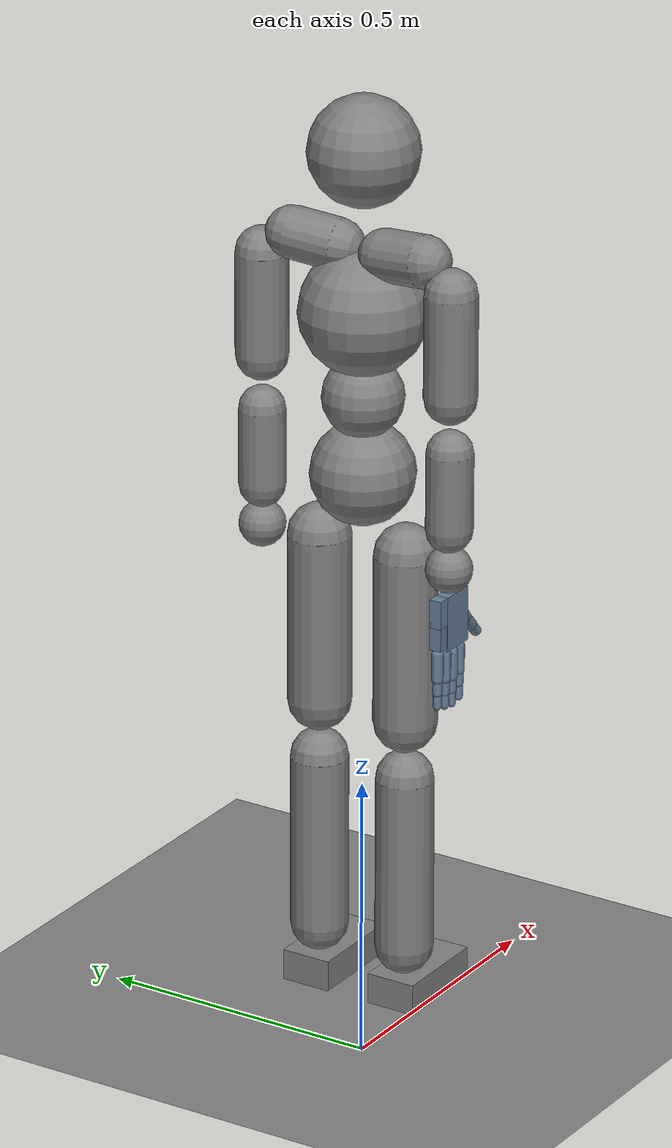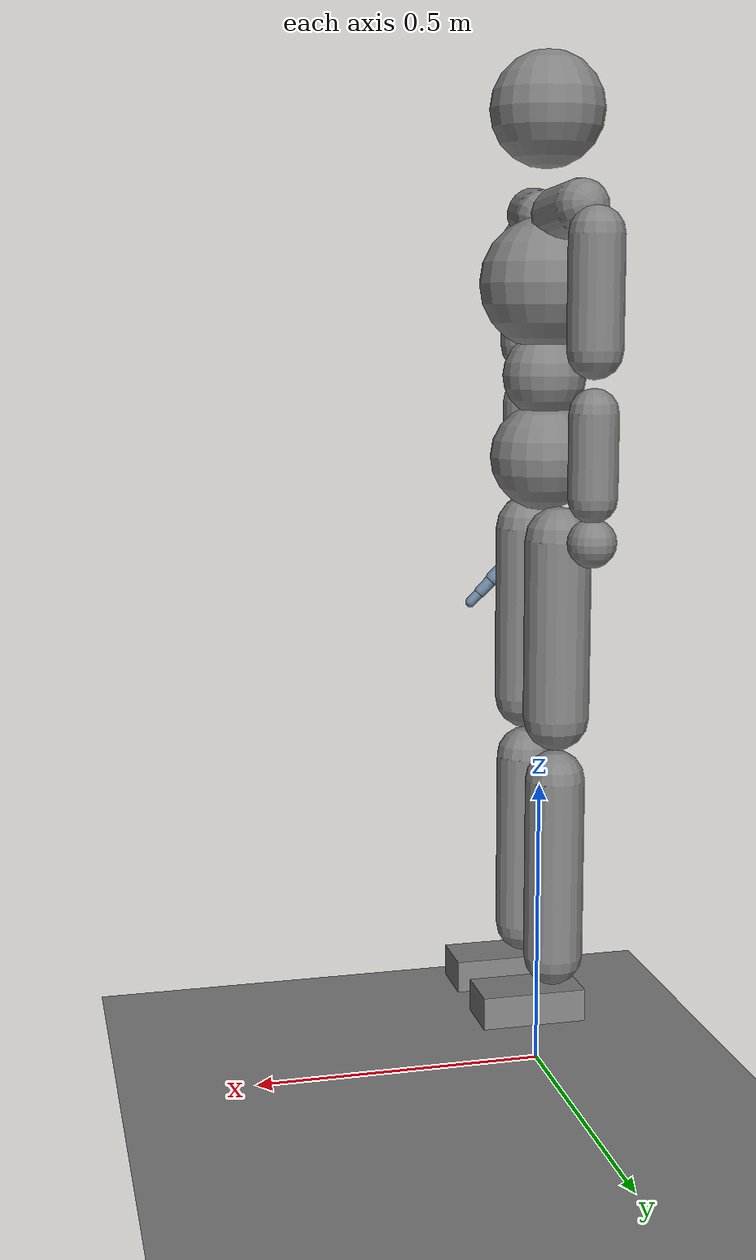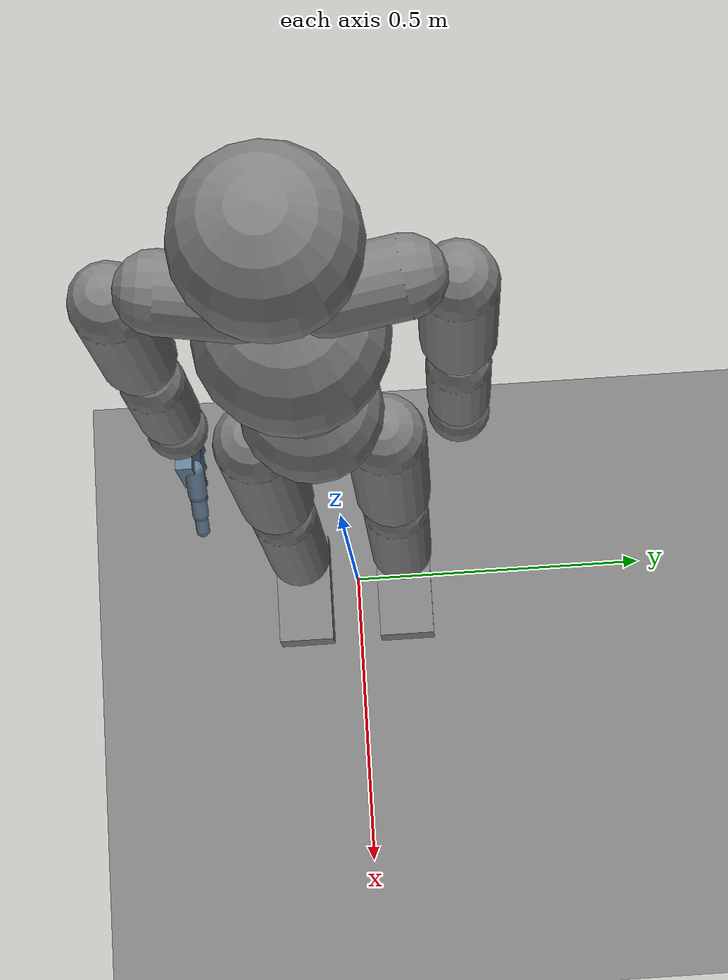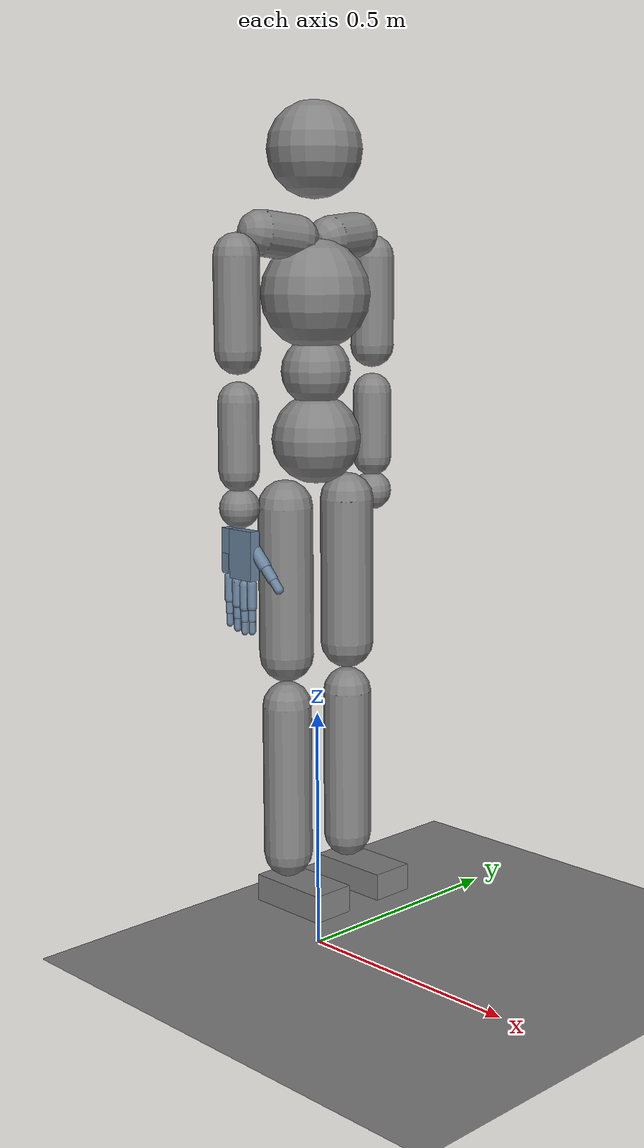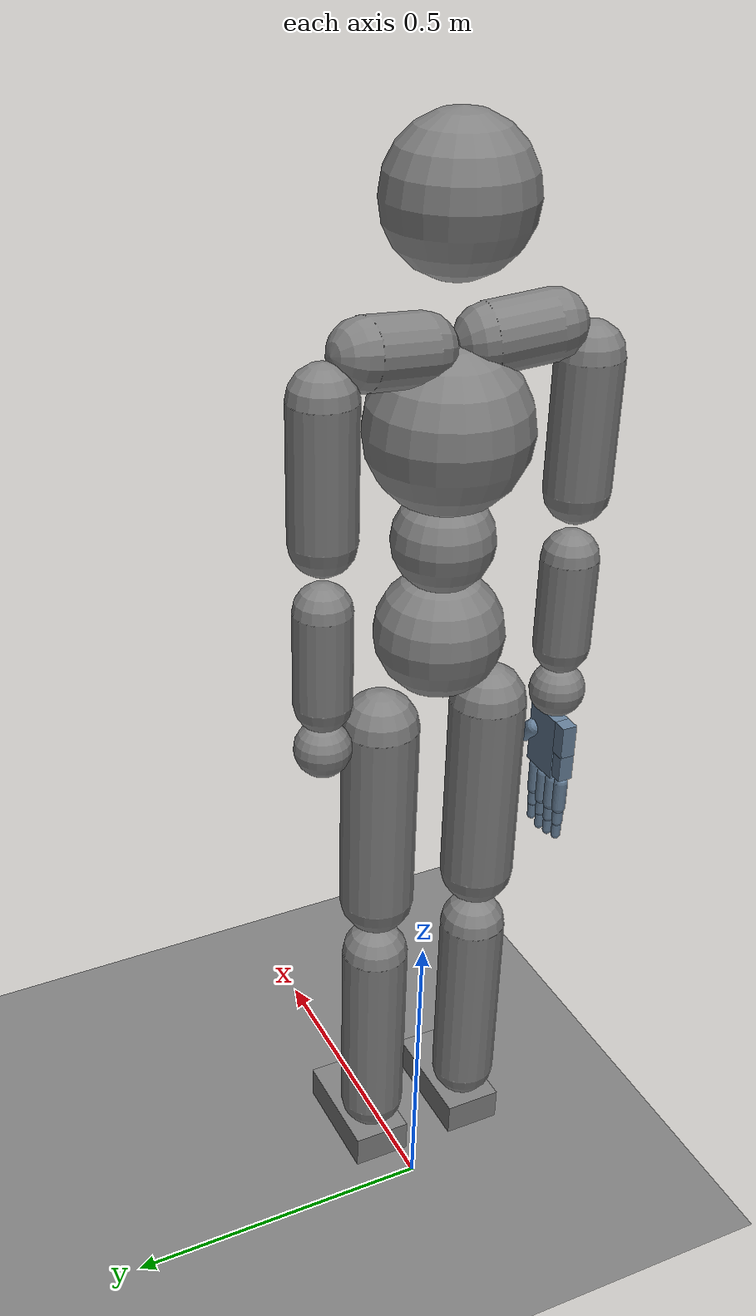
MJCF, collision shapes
<mujoco model="humanoid">

  <statistic extent="2" center="0 0 1"/>

  <option timestep="0.002" iterations="20" apirate="200">
    <flag warmstart="enable"></flag>
  </option>

  <compiler angle="radian" coordinate="local" meshdir="../stls/hand" texturedir="../textures"></compiler>

  <size njmax="500" nconmax="100" nuser_jnt="1" nuser_site="1" nuser_tendon="1" nuser_sensor="1" nuser_actuator="16" nstack="600000"></size>

  <visual>
      <map fogstart="3" fogend="5" force="0.1"></map>
      <quality shadowsize="4096"></quality>
  </visual>

  <asset>
    <texture type="skybox" builtin="gradient" rgb1="0.44 0.85 0.56" rgb2="0.46 0.87 0.58" width="32" height="32"></texture>

    <texture name="robot0:texplane" type="2d" builtin="checker" rgb1="0.2 0.3 0.4" rgb2="0.1 0.15 0.2" width="512" height="512"></texture>
    <texture name="robot0:texgeom" type="cube" builtin="flat" mark="cross" width="127" height="127" rgb1="0.3 0.6 0.5" rgb2="0.3 0.6 0.5" markrgb="0 0 0" random="0.01"></texture>

    <material name="robot0:MatGnd" reflectance="0.5" texture="robot0:texplane" texrepeat="1 1" texuniform="true"></material>
    <material name="robot0:MatColl" specular="1" shininess="0.3" reflectance="0.5" rgba="0.4 0.5 0.6 1"></material>
    <material name="robot0:MatViz" specular="0.75" shininess="0.1" reflectance="0.5" rgba="0.93 0.93 0.93 1"></material>
    <material name="robot0:object" texture="robot0:texgeom" texuniform="false"></material>
    <material name="floor_mat" specular="0" shininess="0.5" reflectance="0" rgba="0.2 0.2 0.2 0"></material>

    <mesh name="robot0:forearm" file="forearm_electric.stl"></mesh>
    <mesh name="robot0:forearm_cvx" file="forearm_electric_cvx.stl"></mesh>
    <mesh name="robot0:wrist" scale="0.001 0.001 0.001" file="wrist.stl"></mesh>
    <mesh name="robot0:palm" scale="0.001 0.001 0.001" file="palm.stl"></mesh>
    <mesh name="robot0:knuckle" scale="0.001 0.001 0.001" file="knuckle.stl"></mesh>
    <mesh name="robot0:F3" scale="0.001 0.001 0.001" file="F3.stl"></mesh>
    <mesh name="robot0:F2" scale="0.001 0.001 0.001" file="F2.stl"></mesh>
    <mesh name="robot0:F1" scale="0.001 0.001 0.001" file="F1.stl"></mesh>
    <mesh name="robot0:lfmetacarpal" scale="0.001 0.001 0.001" file="lfmetacarpal.stl"></mesh>
    <mesh name="robot0:TH3_z" scale="0.001 0.001 0.001" file="TH3_z.stl"></mesh>
    <mesh name="robot0:TH2_z" scale="0.001 0.001 0.001" file="TH2_z.stl"></mesh>
    <mesh name="robot0:TH1_z" scale="0.001 0.001 0.001" file="TH1_z.stl"></mesh>
  </asset>

  <default>
    <motor ctrlrange="-1 1" ctrllimited="true"/>
    <default class="body">
      <geom type="capsule" condim="1" friction="1.0 0.05 0.05" solimp=".9 .99 .003" solref=".015 1"/>
      <joint type="hinge" damping="0.1" stiffness="5" armature=".007" limited="true" solimplimit="0 .99 .01"/>
      <site size=".04" group="3"/>
      <default class="force-torque">
        <site type="box" size=".01 .01 .02" rgba="1 0 0 1" />
      </default>
      <default class="touch">
        <site type="capsule" rgba="0 0 1 .3"/>
      </default>
    </default>
    <default class="robot0:asset_class">
        <geom friction="1 0.005 0.001" condim="3" margin="0.0005" contype="1" conaffinity="1"></geom>
        <joint limited="true" damping="0.1" armature="0.001" margin="0.01" frictionloss="0.001"></joint>
        <site size="0.005" rgba="0.4 0.9 0.4 1"></site>
        <general ctrllimited="true" forcelimited="true"></general>
    </default>
    <default class="robot0:D_Touch">
        <site type="box" size="0.009 0.004 0.013" pos="0 -0.004 0.018" rgba="0.8 0.8 0.8 0.15" group="4"></site>
    </default>
    <default class="robot0:DC_Hand">
        <geom material="robot0:MatColl" contype="1" conaffinity="0" group="4"></geom>
    </default>
    <default class="robot0:D_Vizual">
        <geom material="robot0:MatViz" contype="0" conaffinity="0" group="1" type="mesh"></geom>
    </default>
    <default class="robot0:free">
        <joint type="free" damping="0" armature="0" limited="false"></joint>
    </default>
  </default>

  <worldbody>
    <geom name="floor" type="plane" conaffinity="1" size="100 100 .2"/>
    <body name="pelvis" pos="0 0 1" childclass="body">
      <freejoint name="root"/>
      <site name="root" class="force-torque"/>
      <geom name="pelvis" type="sphere" pos="0 0 0.07" size=".09" density="2226"/>
      <geom name="upper_waist" type="sphere" pos="0 0 0.205" size="0.07" density="2226"/>
      <site name="pelvis" class="touch" type="sphere" pos="0 0 0.07" size="0.091"/>
      <site name="upper_waist" class="touch" type="sphere" pos="0 0 0.205" size="0.071"/>

      <body name="torso" pos="0 0 0.236151">
        <light name="top" pos="0 0 2" mode="trackcom"/>
        <camera name="back" pos="-3 0 1" xyaxes="0 -1 0 1 0 2" mode="trackcom"/>
        <camera name="side" pos="0 -3 1" xyaxes="1 0 0 0 1 2" mode="trackcom"/>
        <joint name="abdomen_x" pos="0 0 0" axis="1 0 0" range="-60 60" stiffness="600" damping="60" armature=".025"/>
        <joint name="abdomen_y" pos="0 0 0" axis="0 1 0" range="-60 90" stiffness="600" damping="60" armature=".025"/>
        <joint name="abdomen_z" pos="0 0 0" axis="0 0 1" range="-50 50" stiffness="600" damping="60" armature=".025"/>
        <geom name="torso" type="sphere" pos="0 0 0.12" size="0.11" density="1794"/>
        <site name="torso" class="touch" type="sphere" pos="0 0 0.12" size="0.111"/>

        <geom name="right_clavicle" fromto="-0.0060125 -0.0457775 0.2287955 -0.016835 -0.128177 0.2376182" size=".045" density="1100"/>
        <geom name="left_clavicle" fromto="-0.0060125 0.0457775 0.2287955 -0.016835 0.128177 0.2376182" size=".045" density="1100"/>

        <body name="head" pos="0 0 0.223894">
          <joint name="neck_x" axis="1 0 0" range="-50 50" stiffness="50" damping="5" armature=".017"/>
          <joint name="neck_y" axis="0 1 0" range="-40 60" stiffness="50" damping="5" armature=".017"/>
          <joint name="neck_z" axis="0 0 1" range="-45 45" stiffness="50" damping="5" armature=".017"/>
          <geom name="head" type="sphere" pos="0 0 0.175" size="0.095" density="1081"/>
          <site name="head" class="touch" pos="0 0 0.175" type="sphere" size="0.103"/>
          <camera name="egocentric" pos=".103 0 0.175" xyaxes="0 -1 0 .1 0 1" fovy="80"/>
        </body>

        <body name="right_upper_arm" pos="-0.02405 -0.18311 0.24350">
          <joint name="right_shoulder_x" axis="1 0 0" range="-180 45" stiffness="200" damping="20" armature=".02"/>
          <joint name="right_shoulder_y" axis="0 1 0" range="-180 60" stiffness="200" damping="20" armature=".02"/>
          <joint name="right_shoulder_z" axis="0 0 1"  range="-90 90" stiffness="200" damping="20" armature=".02"/>
          <geom name="right_upper_arm" fromto="0 0 -0.05 0 0 -0.23" size=".045" density="982"/>
          <site name="right_upper_arm" class="touch" pos="0 0 -0.14" size="0.046 0.1" zaxis="0 0 1"/>

          <body name="right_lower_arm" pos="0 0 -0.274788">
            <joint name="right_elbow" axis="0 1 0" range="-160 0" stiffness="150" damping="15" armature=".015"/>
            <geom name="right_lower_arm" fromto="0 0 -0.0525 0 0 -0.1875" size="0.04" density="1056"/>
            <site name="right_lower_arm" class="touch" pos="0 0 -0.12" size="0.041 0.0685" zaxis="0 1 0"/>

            <body name="right_hand" pos="0 0 -0.258947">
              <geom name="right_hand" type="sphere" size=".04" density="1865"/>
              <site name="right_hand" class="touch" type="sphere" size=".041"/>

                        <joint name="robot0:WRJ1" type="hinge" pos="0 0 0" axis="0 1 0" range="-0.489 0.14" damping="0.5" armature="0.005" user="1123"></joint>

                        <body name="robot0:palm" pos="0 0 -0.053" quat="0 1 0 0">
                            <inertial pos="0.006 0 0.036" quat="0.716 0.044 0.075 0.693" mass="0.3" diaginertia="0.001 0.001 0.001"></inertial>
                            <joint name="robot0:WRJ0" type="hinge" pos="0 0 0" axis="1 0 0" range="-0.698 0.489" damping="0.5" armature="0.005" user="1122"></joint>
                            <geom class="robot0:D_Vizual" name="robot0:V_palm" mesh="robot0:palm"></geom>
                            <geom class="robot0:DC_Hand" name="robot0:C_palm0" type="box" pos="0.011 0 0.038" size="0.032 0.0111 0.049" rgba="0.4 0.5 0.6 0.1"></geom>
                            <geom class="robot0:DC_Hand" name="robot0:C_palm1" type="box" pos="-0.032 0 0.014" size="0.011 0.0111 0.025" rgba="0.4 0.5 0.6 0.1"></geom>
                            <body name="robot0:ffknuckle" pos="0.033 0 0.095">
                                <inertial pos="0 0 0" quat="0.52 0.854 0.006 -0.003" mass="0.008" diaginertia="1e-05 1e-05 1e-05"></inertial>
                                <joint name="robot0:FFJ3" type="hinge" pos="0 0 0" axis="0 1 0" range="-0.349 0.349" user="1103"></joint>
                                <geom class="robot0:D_Vizual" name="robot0:V_ffknuckle" mesh="robot0:knuckle"></geom>
                                <body name="robot0:ffproximal" pos="0 0 0">
                                    <inertial pos="0 0 0.023" quat="0.707 -0.004 0.004 0.707" mass="0.014" diaginertia="1e-05 1e-05 1e-05"></inertial>
                                    <joint name="robot0:FFJ2" type="hinge" pos="0 0 0" axis="1 0 0" range="0 1.571" user="1102"></joint>
                                    <geom class="robot0:D_Vizual" name="robot0:V_ffproximal" mesh="robot0:F3"></geom>
                                    <geom class="robot0:DC_Hand" name="robot0:C_ffproximal" type="capsule" pos="0 0 0.0225" size="0.01 0.0225"></geom>
                                    <body name="robot0:ffmiddle" pos="0 0 0.045">
                                        <inertial pos="0 0 0.011" quat="0.707 0 0 0.707" mass="0.012" diaginertia="1e-05 1e-05 1e-05"></inertial>
                                        <joint name="robot0:FFJ1" type="hinge" pos="0 0 0" axis="1 0 0" range="0 1.571" user="1101"></joint>
                                        <geom class="robot0:D_Vizual" name="robot0:V_ffmiddle" mesh="robot0:F2"></geom>
                                        <geom class="robot0:DC_Hand" name="robot0:C_ffmiddle" type="capsule" pos="0 0 0.0125" size="0.00805 0.0125"></geom>
                                        <body name="robot0:ffdistal" pos="0 0 0.025">
                                            <inertial pos="0 0 0.015" quat="0.707 -0.003 0.003 0.707" mass="0.01" diaginertia="1e-05 1e-05 1e-05"></inertial>
                                            <joint name="robot0:FFJ0" type="hinge" pos="0 0 0" axis="1 0 0" range="0 1.571" user="1100"></joint>
                                            <geom class="robot0:D_Vizual" name="robot0:V_ffdistal" pos="0 0 0.001" mesh="robot0:F1"></geom>
                                            <geom class="robot0:DC_Hand" name="robot0:C_ffdistal" type="capsule" pos="0 0 0.012" size="0.00705 0.012" condim="4"></geom>
                                            <site name="robot0:S_fftip" pos="0 0 0.026" group="3"></site>
                                            <site class="robot0:D_Touch" name="robot0:Tch_fftip"></site>
                                        </body>
                                    </body>
                                </body>
                            </body>
                            <body name="robot0:mfknuckle" pos="0.011 0 0.099">
                                <inertial pos="0 0 0" quat="0.52 0.854 0.006 -0.003" mass="0.008" diaginertia="1e-05 1e-05 1e-05"></inertial>
                                <joint name="robot0:MFJ3" type="hinge" pos="0 0 0" axis="0 1 0" range="-0.349 0.349" user="1107"></joint>
                                <geom class="robot0:D_Vizual" name="robot0:V_mfknuckle" mesh="robot0:knuckle"></geom>
                                <body name="robot0:mfproximal" pos="0 0 0">
                                    <inertial pos="0 0 0.023" quat="0.707 -0.004 0.004 0.707" mass="0.014" diaginertia="1e-05 1e-05 1e-05"></inertial>
                                    <joint name="robot0:MFJ2" type="hinge" pos="0 0 0" axis="1 0 0" range="0 1.571" user="1106"></joint>
                                    <geom class="robot0:D_Vizual" name="robot0:V_mfproximal" mesh="robot0:F3"></geom>
                                    <geom class="robot0:DC_Hand" name="robot0:C_mfproximal" type="capsule" pos="0 0 0.0225" size="0.01 0.0225"></geom>
                                    <body name="robot0:mfmiddle" pos="0 0 0.045">
                                        <inertial pos="0 0 0.012" quat="0.707 0 0 0.707" mass="0.012" diaginertia="1e-05 1e-05 1e-05"></inertial>
                                        <joint name="robot0:MFJ1" type="hinge" pos="0 0 0" axis="1 0 0" range="0 1.571" user="1105"></joint>
                                        <geom class="robot0:D_Vizual" name="robot0:V_mfmiddle" mesh="robot0:F2"></geom>
                                        <geom class="robot0:DC_Hand" name="robot0:C_mfmiddle" type="capsule" pos="0 0 0.0125" size="0.00805 0.0125"></geom>
                                        <body name="robot0:mfdistal" pos="0 0 0.025">
                                            <inertial pos="0 0 0.015" quat="0.707 -0.003 0.003 0.707" mass="0.01" diaginertia="1e-05 1e-05 1e-05"></inertial>
                                            <joint name="robot0:MFJ0" type="hinge" pos="0 0 0" axis="1 0 0" range="0 1.571" user="1104"></joint>
                                            <geom class="robot0:D_Vizual" name="robot0:V_mfdistal" mesh="robot0:F1"></geom>
                                            <geom class="robot0:DC_Hand" name="robot0:C_mfdistal" type="capsule" pos="0 0 0.012" size="0.00705 0.012" condim="4"></geom>
                                            <site name="robot0:S_mftip" pos="0 0 0.026" group="3"></site>
                                            <site class="robot0:D_Touch" name="robot0:Tch_mftip"></site>
                                        </body>
                                    </body>
                                </body>
                            </body>
                            <body name="robot0:rfknuckle" pos="-0.011 0 0.095">
                                <inertial pos="0 0 0" quat="0.52 0.854 0.006 -0.003" mass="0.008" diaginertia="1e-05 1e-05 1e-05"></inertial>
                                <joint name="robot0:RFJ3" type="hinge" pos="0 0 0" axis="0 1 0" range="-0.349 0.349" user="1111"></joint>
                                <geom class="robot0:D_Vizual" name="robot0:V_rfknuckle" mesh="robot0:knuckle"></geom>
                                <body name="robot0:rfproximal" pos="0 0 0">
                                    <inertial pos="0 0 0.023" quat="0.707 -0.004 0.004 0.707" mass="0.014" diaginertia="1e-05 1e-05 1e-05"></inertial>
                                    <joint name="robot0:RFJ2" type="hinge" pos="0 0 0" axis="1 0 0" range="0 1.571" user="1110"></joint>
                                    <geom class="robot0:D_Vizual" name="robot0:V_rfproximal" mesh="robot0:F3"></geom>
                                    <geom class="robot0:DC_Hand" name="robot0:C_rfproximal" type="capsule" pos="0 0 0.0225" size="0.01 0.0225"></geom>
                                    <body name="robot0:rfmiddle" pos="0 0 0.045">
                                        <inertial pos="0 0 0.012" quat="0.707 0 0 0.707" mass="0.012" diaginertia="1e-05 1e-05 1e-05"></inertial>
                                        <joint name="robot0:RFJ1" type="hinge" pos="0 0 0" axis="1 0 0" range="0 1.571" user="1109"></joint>
                                        <geom class="robot0:D_Vizual" name="robot0:V_rfmiddle" mesh="robot0:F2"></geom>
                                        <geom class="robot0:DC_Hand" name="robot0:C_rfmiddle" type="capsule" pos="0 0 0.0125" size="0.00805 0.0125"></geom>
                                        <body name="robot0:rfdistal" pos="0 0 0.025">
                                            <inertial pos="0 0 0.015" quat="0.707 -0.003 0.003 0.707" mass="0.01" diaginertia="1e-05 1e-05 1e-05"></inertial>
                                            <joint name="robot0:RFJ0" type="hinge" pos="0 0 0" axis="1 0 0" range="0 1.571" user="1108"></joint>
                                            <geom class="robot0:D_Vizual" name="robot0:V_rfdistal" mesh="robot0:F1" pos="0 0 0.001"></geom>
                                            <geom class="robot0:DC_Hand" name="robot0:C_rfdistal" type="capsule" pos="0 0 0.012" size="0.00705 0.012" condim="4"></geom>
                                            <site name="robot0:S_rftip" pos="0 0 0.026" group="3"></site>
                                            <site class="robot0:D_Touch" name="robot0:Tch_rftip"></site>
                                        </body>
                                    </body>
                                </body>
                            </body>
                            <body name="robot0:lfmetacarpal" pos="-0.017 0 0.044">
                                <inertial pos="-0.014 0.001 0.014" quat="0.709 -0.092 -0.063 0.696" mass="0.075" diaginertia="1e-05 1e-05 1e-05"></inertial>
                                <joint name="robot0:LFJ4" type="hinge" pos="0 0 0" axis="0.571 0 0.821" range="0 0.785" user="1116"></joint>
                                <geom class="robot0:D_Vizual" name="robot0:V_lfmetacarpal" pos="-0.016 0 -0.023" mesh="robot0:lfmetacarpal"></geom>
                                <geom class="robot0:DC_Hand" name="robot0:C_lfmetacarpal" type="box" pos="-0.0165 0 0.01" size="0.0095 0.0111 0.025" rgba="0.4 0.5 0.6 0.2"></geom>
                                <body name="robot0:lfknuckle" pos="-0.017 0 0.044">
                                    <inertial pos="0 0 0" quat="0.52 0.854 0.006 -0.003" mass="0.008" diaginertia="1e-05 1e-05 1e-05"></inertial>
                                    <joint name="robot0:LFJ3" type="hinge" pos="0 0 0" axis="0 1 0" range="-0.349 0.349" user="1115"></joint>
                                    <geom class="robot0:D_Vizual" name="robot0:V_lfknuckle" mesh="robot0:knuckle"></geom>
                                    <body name="robot0:lfproximal" pos="0 0 0">
                                        <inertial pos="0 0 0.023" quat="0.707 -0.004 0.004 0.707" mass="0.014" diaginertia="1e-05 1e-05 1e-05"></inertial>
                                        <joint name="robot0:LFJ2" type="hinge" pos="0 0 0" axis="1 0 0" range="0 1.571" user="1114"></joint>
                                        <geom class="robot0:D_Vizual" name="robot0:V_lfproximal" mesh="robot0:F3"></geom>
                                        <geom class="robot0:DC_Hand" name="robot0:C_lfproximal" type="capsule" pos="0 0 0.0225" size="0.01 0.0225"></geom>
                                        <body name="robot0:lfmiddle" pos="0 0 0.045">
                                            <inertial pos="0 0 0.012" quat="0.707 0 0 0.707" mass="0.012" diaginertia="1e-05 1e-05 1e-05"></inertial>
                                            <joint name="robot0:LFJ1" type="hinge" pos="0 0 0" axis="1 0 0" range="0 1.571" user="1113"></joint>
                                            <geom class="robot0:D_Vizual" name="robot0:V_lfmiddle" mesh="robot0:F2"></geom>
                                            <geom class="robot0:DC_Hand" name="robot0:C_lfmiddle" type="capsule" pos="0 0 0.0125" size="0.00805 0.0125"></geom>
                                            <body name="robot0:lfdistal" pos="0 0 0.025">
                                                <inertial pos="0 0 0.015" quat="0.707 -0.003 0.003 0.707" mass="0.01" diaginertia="1e-05 1e-05 1e-05"></inertial>
                                                <joint name="robot0:LFJ0" type="hinge" pos="0 0 0" axis="1 0 0" range="0 1.571" user="1112"></joint>
                                                <geom class="robot0:D_Vizual" name="robot0:V_lfdistal" mesh="robot0:F1" pos="0 0 0.001"></geom>
                                                <geom class="robot0:DC_Hand" name="robot0:C_lfdistal" type="capsule" pos="0 0 0.012" size="0.00705 0.012" condim="4"></geom>
                                                <site name="robot0:S_lftip" pos="0 0 0.026" group="3"></site>
                                                <site class="robot0:D_Touch" name="robot0:Tch_lftip"></site>
                                            </body>
                                        </body>
                                    </body>
                                </body>
                            </body>
                            <body name="robot0:thbase" pos="0.034 -0.009 0.029" axisangle="0 1 0 0.785">
                                <inertial pos="0 0 0" mass="0.01" diaginertia="1e-05 1e-05 1e-05"></inertial>
                                <joint name="robot0:THJ4" type="hinge" pos="0 0 0" axis="0 0 -1" range="-1.047 1.047" user="1121"></joint>
                                <geom name="robot0:V_thbase" type="box" group="1" pos="0 0 0" size="0.001 0.001 0.001"></geom>
                                <body name="robot0:thproximal" pos="0 0 0">
                                    <inertial pos="0 0 0.017" quat="0.982 0 0.001 0.191" mass="0.016" diaginertia="1e-05 1e-05 1e-05"></inertial>
                                    <joint name="robot0:THJ3" type="hinge" pos="0 0 0" axis="1 0 0" range="0 1.222" user="1120"></joint>
                                    <geom class="robot0:D_Vizual" name="robot0:V_thproximal" mesh="robot0:TH3_z"></geom>
                                    <geom class="robot0:DC_Hand" name="robot0:C_thproximal" type="capsule" pos="0 0 0.019" size="0.013 0.019" rgba="0.4 0.5 0.6 0.1"></geom>
                                    <body name="robot0:thhub" pos="0 0 0.038">
                                        <inertial pos="0 0 0" mass="0.002" diaginertia="1e-05 1e-05 1e-05"></inertial>
                                        <joint name="robot0:THJ2" type="hinge" pos="0 0 0" axis="1 0 0" range="-0.209 0.209" user="1119"></joint>
                                        <geom name="robot0:V_thhub" type="box" group="1" pos="0 0 0" size="0.001 0.001 0.001"></geom>
                                        <body name="robot0:thmiddle" pos="0 0 0">
                                            <inertial pos="0 0 0.016" quat="1 -0.001 -0.007 0.003" mass="0.016" diaginertia="1e-05 1e-05 1e-05"></inertial>
                                            <joint name="robot0:THJ1" type="hinge" pos="0 0 0" axis="0 1 0" range="-0.524 0.524" user="1118"></joint>
                                            <geom class="robot0:D_Vizual" name="robot0:V_thmiddle" mesh="robot0:TH2_z"></geom>
                                            <geom class="robot0:DC_Hand" name="robot0:C_thmiddle" type="capsule" pos="0 0 0.016" size="0.011 0.016"></geom>
                                            <body name="robot0:thdistal" pos="0 0 0.032">
                                                <inertial pos="0 0 0.016" quat="0.999 -0.005 -0.047 0.005" mass="0.016" diaginertia="1e-05 1e-05 1e-05"></inertial>
                                                <joint name="robot0:THJ0" type="hinge" pos="0 0 0" axis="0 1 0" range="-1.571 0" user="1117"></joint>
                                                <geom class="robot0:D_Vizual" name="robot0:V_thdistal" mesh="robot0:TH1_z"></geom>
                                                <geom class="robot0:DC_Hand" name="robot0:C_thdistal" type="capsule" pos="0 0 0.013" size="0.00918 0.013" condim="4"></geom>
                                                <site name="robot0:S_thtip" pos="0 0 0.0275" group="3"></site>
                                                <site class="robot0:D_Touch" name="robot0:Tch_thtip" size="0.005 0.011 0.016" pos="-0.005 0 0.02"></site>
                                            </body>
                                        </body>
                                    </body>
                                </body>
                            </body>
                        </body>

            </body>
          </body>
        </body>

        <body name="left_upper_arm" pos="-0.02405 0.18311 0.24350">
          <joint name="left_shoulder_x" axis="1 0 0" range="-45 180" stiffness="200" damping="20" armature=".02"/>
          <joint name="left_shoulder_y" axis="0 1 0" range="-180 60" stiffness="200" damping="20" armature=".02"/>
          <joint name="left_shoulder_z" axis="0 0 1"  range="-90 90" stiffness="200" damping="20" armature=".02"/>
          <geom name="left_upper_arm" fromto="0 0 -0.05 0 0 -0.23" size="0.045" density="982"/>
          <site name="left_upper_arm" class="touch" pos="0 0 -0.14" size="0.046 0.1" zaxis="0 0 1"/>

          <body name="left_lower_arm" pos="0 0 -0.274788">
            <joint name="left_elbow" axis="0 1 0" range="-160 0" stiffness="150" damping="15" armature=".015"/>
            <geom name="left_lower_arm" fromto="0 0 -0.0525 0 0 -0.1875" size="0.04" density="1056"/>
            <site name="left_lower_arm" class="touch" pos="0 0 -0.1" size="0.041 0.0685" zaxis="0 0 1"/>

            <body name="left_hand" pos="0 0 -0.258947">
              <geom name="left_hand" type="sphere" size=".04" density="1865"/>
              <site name="left_hand" class="touch" type="sphere" size=".041"/>
            </body>
          </body>
        </body>
      </body>

      <body name="right_thigh" pos="0 -0.084887 0">
        <site name="right_hip" class="force-torque"/>
        <joint name="right_hip_x" axis="1 0 0" range="-60 15" stiffness="300" damping="30" armature=".02"/>
        <joint name="right_hip_y" axis="0 1 0" range="-140 60" stiffness="300" damping="30" armature=".02"/>
        <joint name="right_hip_z" axis="0 0 1" range="-60 35" stiffness="300" damping="30" armature=".02"/>
        <geom name="right_thigh" fromto="0 0 -0.06 0 0 -0.36" size="0.055" density="1269"/>
        <site name="right_thigh" class="touch" pos="0 0 -0.21" size="0.056 0.301" zaxis="0 0 -1"/>

        <body name="right_shin" pos="0 0 -0.421546">
          <site name="right_knee" class="force-torque" pos="0 0 0"/>
          <joint name="right_knee" pos="0 0 0" axis="0 1 0" range="0 160" stiffness="300" damping="30" armature=".02"/>
          <geom name="right_shin" fromto="0 0 -0.045 0 0 -0.355"  size=".05" density="1014"/>
          <site name="right_shin" class="touch" pos="0 0 -0.2" size="0.051 0.156" zaxis="0 0 -1"/>

          <body name="right_foot" pos="0 0 -0.409870">
            <site name="right_ankle" class="force-torque"/>
            <joint name="right_ankle_x" pos="0 0 0" axis="1 0 0" range="-30 30" stiffness="200" damping="20" armature=".01"/>
            <joint name="right_ankle_y" pos="0 0 0" axis="0 1 0" range="-55 55" stiffness="200" damping="20" armature=".01"/>
            <joint name="right_ankle_z" pos="0 0 0" axis="0 0 1" range="-40 40" stiffness="200" damping="20" armature=".01"/>
            <geom name="right_foot" type="box" pos="0.045 0 -0.0225" size="0.0885 0.045 0.0275" density="1141"/>
            <site name="right_foot" class="touch" type="box" pos="0.045 0 -0.0225" size="0.0895 0.055 0.0285"/>
          </body>
        </body>
      </body>

      <body name="left_thigh" pos="0 0.084887 0">
        <site name="left_hip" class="force-torque"/>
        <joint name="left_hip_x" axis="1 0 0" range="-15 60" stiffness="300" damping="30" armature=".02"/>
        <joint name="left_hip_y" axis="0 1 0" range="-140 60" stiffness="300" damping="30" armature=".02"/>
        <joint name="left_hip_z" axis="0 0 1" range="-35 60" stiffness="300" damping="30" armature=".02"/>
        <geom name="left_thigh" fromto="0 0 -0.06 0 0 -0.36" size=".055" density="1269"/>
        <site name="left_thigh" class="touch" pos="0 0 -0.21" size="0.056 0.301" zaxis="0 0 -1"/>

        <body name="left_shin" pos="0 0 -0.421546">
          <site name="left_knee" class="force-torque" pos="0 0 .02"/>
          <joint name="left_knee" pos="0 0 0" axis="0 1 0" range="0 160" stiffness="300" damping="30" armature=".02"/>
          <geom name="left_shin" fromto="0 0 -0.045 0 0 -0.355"  size=".05" density="1014"/>
          <site name="left_shin" class="touch" pos="0 0 -0.2" size="0.051 0.156" zaxis="0 0 -1"/>

          <body name="left_foot" pos="0 0 -0.409870">
            <site name="left_ankle" class="force-torque"/>
            <joint name="left_ankle_x" pos="0 0 0" axis="1 0 0" range="-30 30" stiffness="200" damping="20" armature=".01"/>
            <joint name="left_ankle_y" pos="0 0 0" axis="0 1 0" range="-55 55" stiffness="200" damping="20" armature=".01"/>
            <joint name="left_ankle_z" pos="0 0 0" axis="0 0 1" range="-40 40" stiffness="200" damping="20" armature=".01"/>
            <geom name="left_foot" type="box" pos="0.045 0 -0.0225" size="0.0885 0.045 0.0275" density="1141"/>
            <site name="left_foot" class="touch" type="box" pos="0.045 0 -0.0225" size="0.0895 0.055 0.0285"/>
          </body>
        </body>
      </body>
    </body>
  </worldbody>

  <contact>
    <pair geom1="robot0:C_ffdistal" geom2="robot0:C_thdistal" condim="1"></pair>
    <pair geom1="robot0:C_ffmiddle" geom2="robot0:C_thdistal" condim="1"></pair>
    <pair geom1="robot0:C_ffproximal" geom2="robot0:C_thdistal" condim="1"></pair>
    <pair geom1="robot0:C_mfproximal" geom2="robot0:C_thdistal" condim="1"></pair>
    <pair geom1="robot0:C_mfdistal" geom2="robot0:C_thdistal" condim="1"></pair>
    <pair geom1="robot0:C_rfdistal" geom2="robot0:C_thdistal" condim="1"></pair>
    <pair geom1="robot0:C_lfdistal" geom2="robot0:C_thdistal" condim="1"></pair>
    <pair geom1="robot0:C_palm0" geom2="robot0:C_thdistal" condim="1"></pair>
    <pair geom1="robot0:C_mfdistal" geom2="robot0:C_ffdistal" condim="1"></pair>
    <pair geom1="robot0:C_rfdistal" geom2="robot0:C_mfdistal" condim="1"></pair>
    <pair geom1="robot0:C_lfdistal" geom2="robot0:C_rfdistal" condim="1"></pair>
    <pair geom1="robot0:C_mfproximal" geom2="robot0:C_ffproximal" condim="1"></pair>
    <pair geom1="robot0:C_rfproximal" geom2="robot0:C_mfproximal" condim="1"></pair>
    <pair geom1="robot0:C_lfproximal" geom2="robot0:C_rfproximal" condim="1"></pair>
    <pair geom1="robot0:C_lfdistal" geom2="robot0:C_rfdistal" condim="1"></pair>
    <pair geom1="robot0:C_lfdistal" geom2="robot0:C_mfdistal" condim="1"></pair>
    <pair geom1="robot0:C_lfdistal" geom2="robot0:C_rfmiddle" condim="1"></pair>
    <pair geom1="robot0:C_lfmiddle" geom2="robot0:C_rfdistal" condim="1"></pair>
    <pair geom1="robot0:C_lfmiddle" geom2="robot0:C_rfmiddle" condim="1"></pair>
  </contact>

  <tendon>
    <fixed name="robot0:T_FFJ1c" limited="true" range="-0.001 0.001">
        <joint joint="robot0:FFJ0" coef="0.00705"></joint>
        <joint joint="robot0:FFJ1" coef="-0.00805"></joint>
    </fixed>
    <fixed name="robot0:T_MFJ1c" limited="true" range="-0.001 0.001">
        <joint joint="robot0:MFJ0" coef="0.00705"></joint>
        <joint joint="robot0:MFJ1" coef="-0.00805"></joint>
    </fixed>
    <fixed name="robot0:T_RFJ1c" limited="true" range="-0.001 0.001">
        <joint joint="robot0:RFJ0" coef="0.00705"></joint>
        <joint joint="robot0:RFJ1" coef="-0.00805"></joint>
    </fixed>
    <fixed name="robot0:T_LFJ1c" limited="true" range="-0.001 0.001">
        <joint joint="robot0:LFJ0" coef="0.00705"></joint>
        <joint joint="robot0:LFJ1" coef="-0.00805"></joint>
    </fixed>

  </tendon>

  <actuator>
    <motor name='abdomen_x'       gear='125' joint='abdomen_x'/>
    <motor name='abdomen_y'       gear='125' joint='abdomen_y'/>
    <motor name='abdomen_z'       gear='125' joint='abdomen_z'/>
    <motor name='neck_x'          gear='20' joint='neck_x'/>
    <motor name='neck_y'          gear='20' joint='neck_y'/>
    <motor name='neck_z'          gear='20' joint='neck_z'/>
    <motor name='right_shoulder_x' gear='70' joint='right_shoulder_x'/>
    <motor name='right_shoulder_y' gear='70' joint='right_shoulder_y'/>
    <motor name='right_shoulder_z' gear='70' joint='right_shoulder_z'/>
    <motor name='right_elbow'     gear='60' joint='right_elbow'/>
    <motor name='left_shoulder_x'  gear='70' joint='left_shoulder_x'/>
    <motor name='left_shoulder_y'  gear='70' joint='left_shoulder_y'/>
    <motor name='left_shoulder_z'  gear='70' joint='left_shoulder_z'/>
    <motor name='left_elbow'      gear='60' joint='left_elbow'/>
    <motor name='right_hip_x'     gear='125' joint='right_hip_x'/>
    <motor name='right_hip_z'     gear='125' joint='right_hip_z'/>
    <motor name='right_hip_y'     gear='125' joint='right_hip_y'/>
    <motor name='right_knee'      gear='100' joint='right_knee'/>
    <motor name='right_ankle_x'   gear='50' joint='right_ankle_x'/>
    <motor name='right_ankle_y'   gear='50' joint='right_ankle_y'/>
    <motor name='right_ankle_z'   gear='50' joint='right_ankle_z'/>
    <motor name='left_hip_x'      gear='125' joint='left_hip_x'/>
    <motor name='left_hip_z'      gear='125' joint='left_hip_z'/>
    <motor name='left_hip_y'      gear='125' joint='left_hip_y'/>
    <motor name='left_knee'       gear='100' joint='left_knee'/>
    <motor name='left_ankle_x'    gear='50' joint='left_ankle_x'/>
    <motor name='left_ankle_y'    gear='50' joint='left_ankle_y'/>
    <motor name='left_ankle_z'    gear='50' joint='left_ankle_z'/>

    <position name="robot0:A_WRJ1" class="robot0:asset_class" user="2038" joint="robot0:WRJ1" ctrlrange="-0.489 0.14" kp="5" forcerange="-4.785 4.785"></position>
    <position name="robot0:A_WRJ0" class="robot0:asset_class" user="2036" joint="robot0:WRJ0" ctrlrange="-0.698 0.489" kp="5" forcerange="-2.175 2.175"></position>
    <position name="robot0:A_FFJ3" class="robot0:asset_class" user="2004" joint="robot0:FFJ3" ctrlrange="-0.349 0.349" kp="1" forcerange="-0.9 0.9"></position>
    <position name="robot0:A_FFJ2" class="robot0:asset_class" user="2002" joint="robot0:FFJ2" ctrlrange="0 1.571" kp="1" forcerange="-0.9 0.9"></position>
    <position name="robot0:A_FFJ1" class="robot0:asset_class" user="2000" joint="robot0:FFJ1" ctrlrange="0 1.571" kp="1" forcerange="-0.7245 0.7245"></position>
    <position name="robot0:A_MFJ3" class="robot0:asset_class" user="2010" joint="robot0:MFJ3" ctrlrange="-0.349 0.349" kp="1" forcerange="-0.9 0.9"></position>
    <position name="robot0:A_MFJ2" class="robot0:asset_class" user="2008" joint="robot0:MFJ2" ctrlrange="0 1.571" kp="1" forcerange="-0.9 0.9"></position>
    <position name="robot0:A_MFJ1" class="robot0:asset_class" user="2006" joint="robot0:MFJ1" ctrlrange="0 1.571" kp="1" forcerange="-0.7245 0.7245"></position>
    <position name="robot0:A_RFJ3" class="robot0:asset_class" user="2016" joint="robot0:RFJ3" ctrlrange="-0.349 0.349" kp="1" forcerange="-0.9 0.9"></position>
    <position name="robot0:A_RFJ2" class="robot0:asset_class" user="2014" joint="robot0:RFJ2" ctrlrange="0 1.571" kp="1" forcerange="-0.9 0.9"></position>
    <position name="robot0:A_RFJ1" class="robot0:asset_class" user="2012" joint="robot0:RFJ1" ctrlrange="0 1.571" kp="1" forcerange="-0.7245 0.7245"></position>
    <position name="robot0:A_LFJ4" class="robot0:asset_class" user="2024" joint="robot0:LFJ4" ctrlrange="0 0.785" kp="1" forcerange="-0.9 0.9"></position>
    <position name="robot0:A_LFJ3" class="robot0:asset_class" user="2022" joint="robot0:LFJ3" ctrlrange="-0.349 0.349" kp="1" forcerange="-0.9 0.9"></position>
    <position name="robot0:A_LFJ2" class="robot0:asset_class" user="2020" joint="robot0:LFJ2" ctrlrange="0 1.571" kp="1" forcerange="-0.9 0.9"></position>
    <position name="robot0:A_LFJ1" class="robot0:asset_class" user="2018" joint="robot0:LFJ1" ctrlrange="0 1.571" kp="1" forcerange="-0.7245 0.7245"></position>
    <position name="robot0:A_THJ4" class="robot0:asset_class" user="2034" joint="robot0:THJ4" ctrlrange="-1.047 1.047" kp="1" forcerange="-2.3722 2.3722"></position>
    <position name="robot0:A_THJ3" class="robot0:asset_class" user="2032" joint="robot0:THJ3" ctrlrange="0 1.222" kp="1" forcerange="-1.45 1.45"></position>
    <position name="robot0:A_THJ2" class="robot0:asset_class" user="2030" joint="robot0:THJ2" ctrlrange="-0.209 0.209" kp="1" forcerange="-0.99 0.99"></position>
    <position name="robot0:A_THJ1" class="robot0:asset_class" user="2028" joint="robot0:THJ1" ctrlrange="-0.524 0.524" kp="1" forcerange="-0.99 0.99"></position>
    <position name="robot0:A_THJ0" class="robot0:asset_class" user="2026" joint="robot0:THJ0" ctrlrange="-1.571 0" kp="1" forcerange="-0.81 0.81"></position>
  </actuator>

  <sensor>
    <subtreelinvel name="pelvis_subtreelinvel" body="pelvis"/>
    <accelerometer name="root_accel"    site="root"/>
    <velocimeter name="root_vel"        site="root"/>
    <gyro name="root_gyro"              site="root"/>

    <force name="left_ankle_force"       site="left_ankle"/>
    <force name="right_ankle_force"      site="right_ankle"/>
    <force name="left_knee_force"        site="left_knee"/>
    <force name="right_knee_force"       site="right_knee"/>
    <force name="left_hip_force"         site="left_hip"/>
    <force name="right_hip_force"        site="right_hip"/>

    <torque name="left_ankle_torque"     site="left_ankle"/>
    <torque name="right_ankle_torque"    site="right_ankle"/>
    <torque name="left_knee_torque"      site="left_knee"/>
    <torque name="right_knee_torque"     site="right_knee"/>
    <torque name="left_hip_torque"       site="left_hip"/>
    <torque name="right_hip_torque"      site="right_hip"/>

    <touch name="pelvis_touch"           site="pelvis"/>
    <touch name="upper_waist_touch"      site="upper_waist"/>
    <touch name="torso_touch"            site="torso"/>
    <touch name="head_touch"             site="head"/>
    <touch name="right_upper_arm_touch"  site="right_upper_arm"/>
    <touch name="right_lower_arm_touch"  site="right_lower_arm"/>
    <touch name="right_hand_touch"       site="right_hand"/>
    <touch name="left_upper_arm_touch"   site="left_upper_arm"/>
    <touch name="left_lower_arm_touch"   site="left_lower_arm"/>
    <touch name="left_hand_touch"        site="left_hand"/>
    <touch name="right_thigh_touch"      site="right_thigh"/>
    <touch name="right_shin_touch"       site="right_shin"/>
    <touch name="right_foot_touch"       site="right_foot"/>
    <touch name="left_thigh_touch"       site="left_thigh"/>
    <touch name="left_shin_touch"        site="left_shin"/>
    <touch name="left_foot_touch"        site="left_foot"/>

    <jointpos name="robot0:Sjp_WRJ1" joint="robot0:WRJ1"></jointpos>
    <jointpos name="robot0:Sjp_WRJ0" joint="robot0:WRJ0"></jointpos>
    <jointpos name="robot0:Sjp_FFJ3" joint="robot0:FFJ3"></jointpos>
    <jointpos name="robot0:Sjp_FFJ2" joint="robot0:FFJ2"></jointpos>
    <jointpos name="robot0:Sjp_FFJ1" joint="robot0:FFJ1"></jointpos>
    <jointpos name="robot0:Sjp_FFJ0" joint="robot0:FFJ0"></jointpos>
    <jointpos name="robot0:Sjp_MFJ3" joint="robot0:MFJ3"></jointpos>
    <jointpos name="robot0:Sjp_MFJ2" joint="robot0:MFJ2"></jointpos>
    <jointpos name="robot0:Sjp_MFJ1" joint="robot0:MFJ1"></jointpos>
    <jointpos name="robot0:Sjp_MFJ0" joint="robot0:MFJ0"></jointpos>
    <jointpos name="robot0:Sjp_RFJ3" joint="robot0:RFJ3"></jointpos>
    <jointpos name="robot0:Sjp_RFJ2" joint="robot0:RFJ2"></jointpos>
    <jointpos name="robot0:Sjp_RFJ1" joint="robot0:RFJ1"></jointpos>
    <jointpos name="robot0:Sjp_RFJ0" joint="robot0:RFJ0"></jointpos>
    <jointpos name="robot0:Sjp_LFJ4" joint="robot0:LFJ4"></jointpos>
    <jointpos name="robot0:Sjp_LFJ3" joint="robot0:LFJ3"></jointpos>
    <jointpos name="robot0:Sjp_LFJ2" joint="robot0:LFJ2"></jointpos>
    <jointpos name="robot0:Sjp_LFJ1" joint="robot0:LFJ1"></jointpos>
    <jointpos name="robot0:Sjp_LFJ0" joint="robot0:LFJ0"></jointpos>
    <jointpos name="robot0:Sjp_THJ4" joint="robot0:THJ4"></jointpos>
    <jointpos name="robot0:Sjp_THJ3" joint="robot0:THJ3"></jointpos>
    <jointpos name="robot0:Sjp_THJ2" joint="robot0:THJ2"></jointpos>
    <jointpos name="robot0:Sjp_THJ1" joint="robot0:THJ1"></jointpos>
    <jointpos name="robot0:Sjp_THJ0" joint="robot0:THJ0"></jointpos>
    <touch name="robot0:ST_Tch_fftip" site="robot0:Tch_fftip"></touch>
    <touch name="robot0:ST_Tch_mftip" site="robot0:Tch_mftip"></touch>
    <touch name="robot0:ST_Tch_rftip" site="robot0:Tch_rftip"></touch>
    <touch name="robot0:ST_Tch_lftip" site="robot0:Tch_lftip"></touch>
    <touch name="robot0:ST_Tch_thtip" site="robot0:Tch_thtip"></touch>
  </sensor>

</mujoco>
